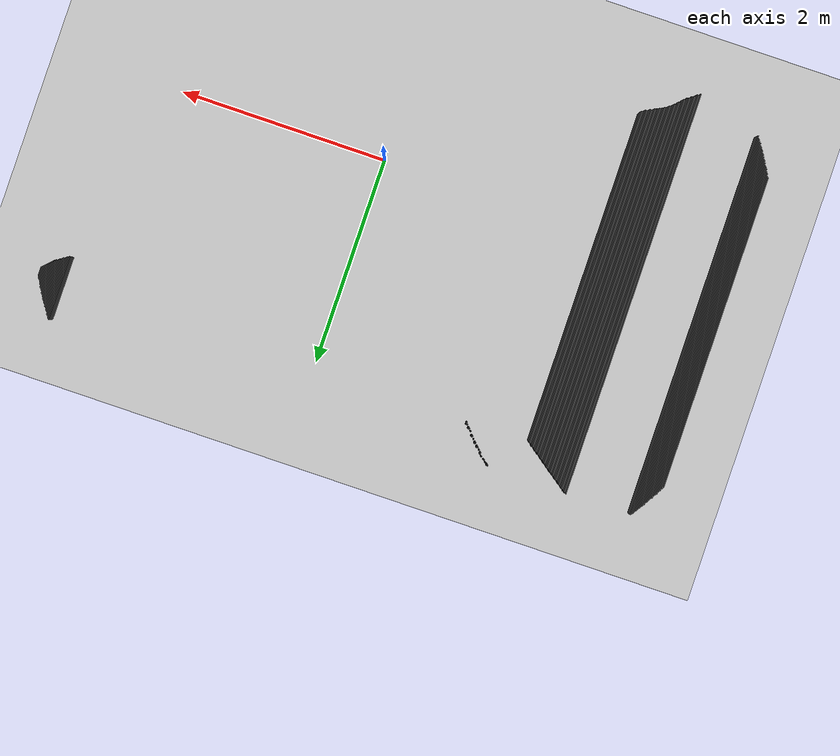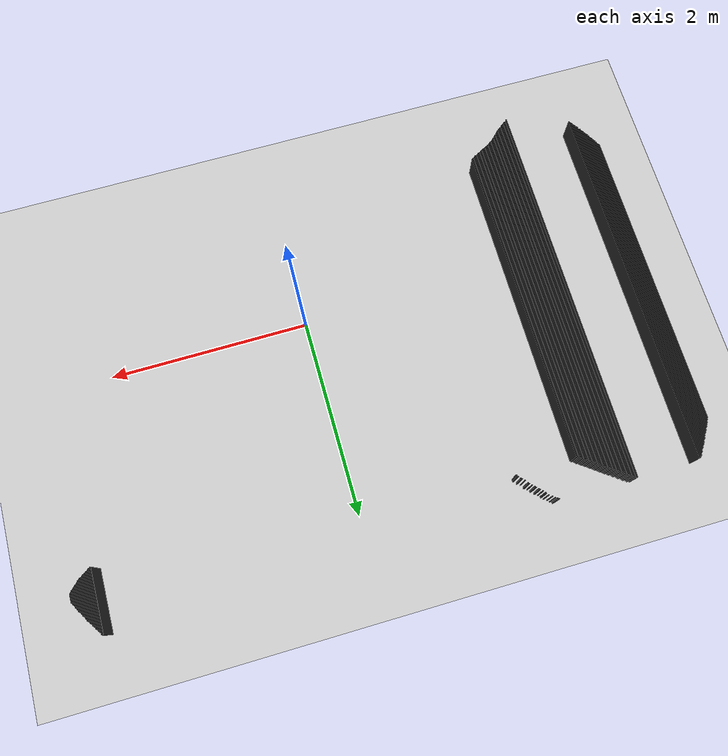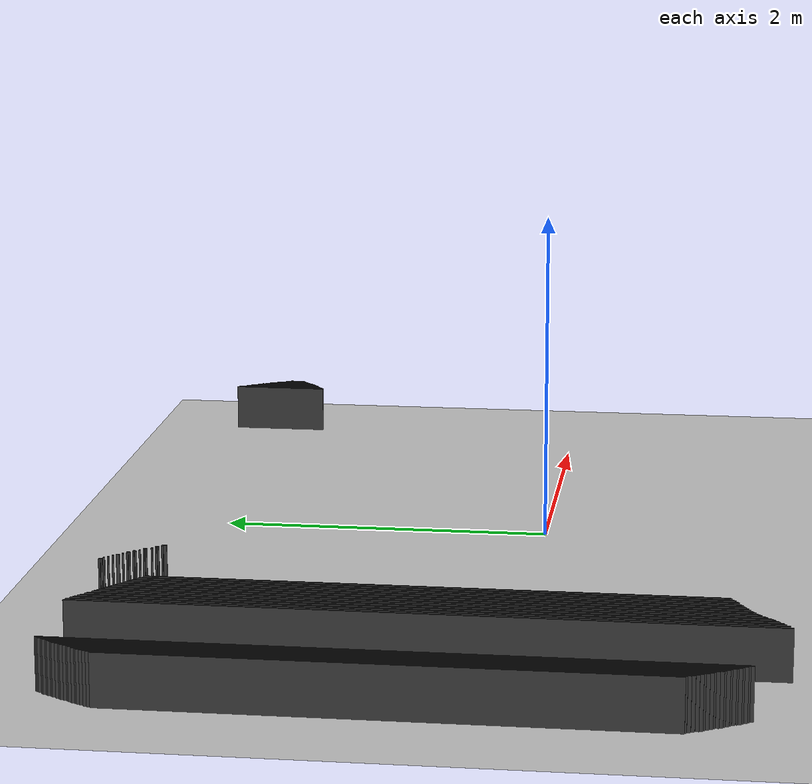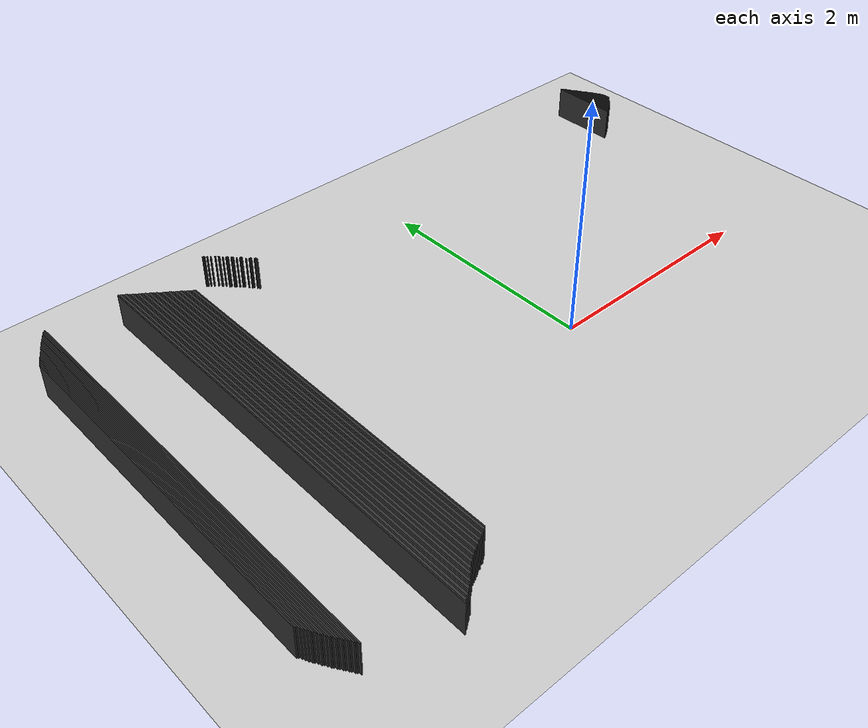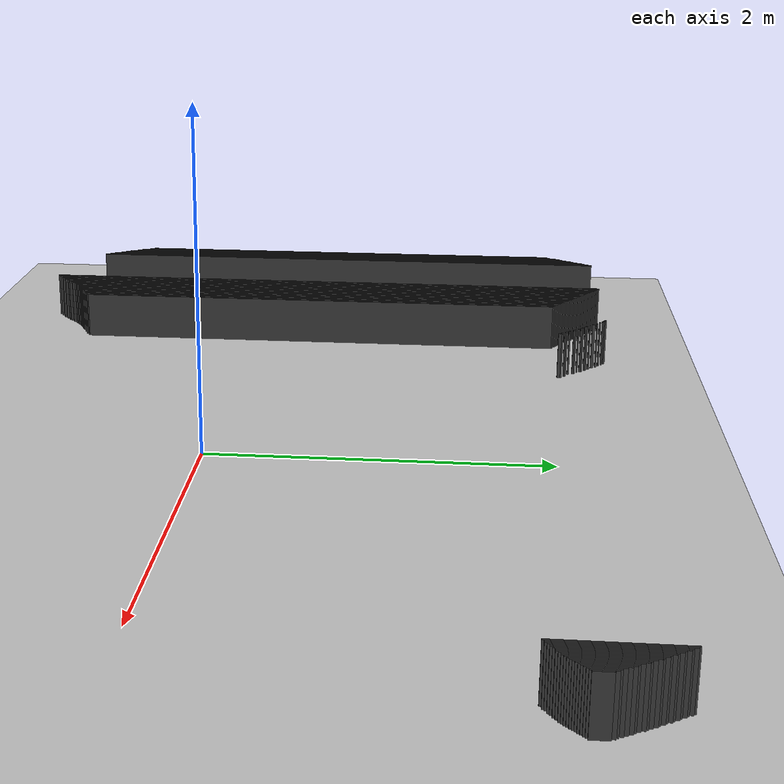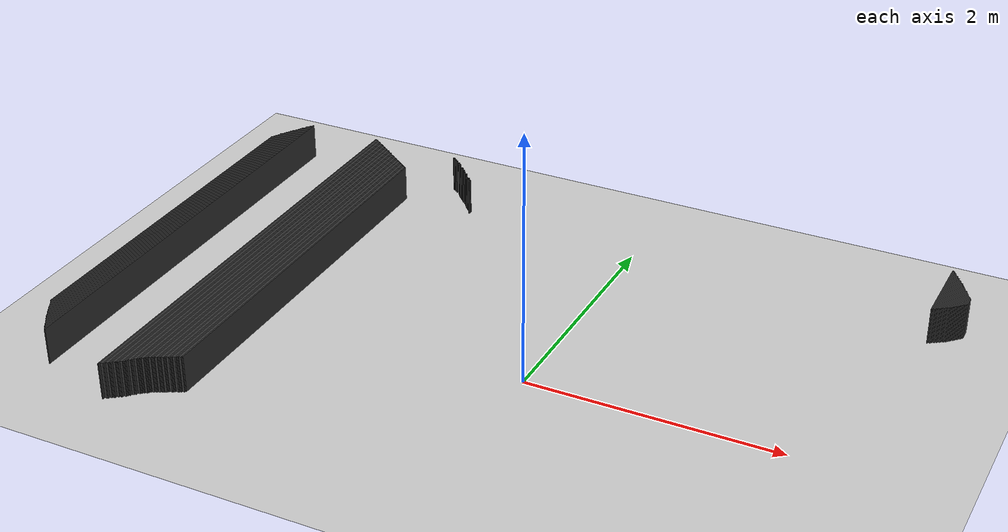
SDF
<sdf version="1.7">
 <world name="mapa_mundo">
  <model name="ground_plane">
   <static>true</static>
   <link name="link">
    <collision name="collision">
     <geometry><plane><normal>0 0 1</normal><size>10 10</size></plane></geometry>
     <surface><friction><ode><mu>100</mu><mu2>50</mu2></ode></friction></surface>
    </collision>
    <visual name="visual">
     <geometry><plane><normal>0 0 1</normal><size>10 10</size></plane></geometry>
     <material>
      <ambient>0.8 0.8 0.8 1</ambient>
      <diffuse>0.8 0.8 0.8 1</diffuse>
      <specular>0.8 0.8 0.8 1</specular>
     </material>
    </visual>
   </link>
  </model>
  <model name="wall_300">
   <static>true</static>
   <link name="link">
    <collision name="collision"><geometry><box><size>0.01 0.62 0.3</size></box></geometry></collision>
    <visual name="visual">
     <geometry><box><size>0.01 0.62 0.3</size></box></geometry>
     <material><ambient>0.2 0.2 0.2 1</ambient><diffuse>0.2 0.2 0.2 1</diffuse></material>
    </visual>
    <pose>2.475 2.11 0.15 0 0 0</pose>
   </link>
  </model>
  <model name="wall_301">
   <static>true</static>
   <link name="link">
    <collision name="collision"><geometry><box><size>0.01 3.93 0.3</size></box></geometry></collision>
    <visual name="visual">
     <geometry><box><size>0.01 3.93 0.3</size></box></geometry>
     <material><ambient>0.2 0.2 0.2 1</ambient><diffuse>0.2 0.2 0.2 1</diffuse></material>
    </visual>
    <pose>-2.595 0.445 0.15 0 0 0</pose>
   </link>
  </model>
  <model name="wall_302">
   <static>true</static>
   <link name="link">
    <collision name="collision"><geometry><box><size>0.01 0.6 0.3</size></box></geometry></collision>
    <visual name="visual">
     <geometry><box><size>0.01 0.6 0.3</size></box></geometry>
     <material><ambient>0.2 0.2 0.2 1</ambient><diffuse>0.2 0.2 0.2 1</diffuse></material>
    </visual>
    <pose>2.485 2.11 0.15 0 0 0</pose>
   </link>
  </model>
  <model name="wall_303">
   <static>true</static>
   <link name="link">
    <collision name="collision"><geometry><box><size>0.01 3.72 0.3</size></box></geometry></collision>
    <visual name="visual">
     <geometry><box><size>0.01 3.72 0.3</size></box></geometry>
     <material><ambient>0.2 0.2 0.2 1</ambient><diffuse>0.2 0.2 0.2 1</diffuse></material>
    </visual>
    <pose>-3.225 0.54 0.15 0 0 0</pose>
   </link>
  </model>
  <model name="wall_304">
   <static>true</static>
   <link name="link">
    <collision name="collision"><geometry><box><size>0.02 3.9 0.3</size></box></geometry></collision>
    <visual name="visual">
     <geometry><box><size>0.02 3.9 0.3</size></box></geometry>
     <material><ambient>0.2 0.2 0.2 1</ambient><diffuse>0.2 0.2 0.2 1</diffuse></material>
    </visual>
    <pose>-2.58 0.45 0.15 0 0 0</pose>
   </link>
  </model>
  <model name="wall_305">
   <static>true</static>
   <link name="link">
    <collision name="collision"><geometry><box><size>0.02 0.01 0.3</size></box></geometry></collision>
    <visual name="visual">
     <geometry><box><size>0.02 0.01 0.3</size></box></geometry>
     <material><ambient>0.2 0.2 0.2 1</ambient><diffuse>0.2 0.2 0.2 1</diffuse></material>
    </visual>
    <pose>-1.82 2.395 0.15 0 0 0</pose>
   </link>
  </model>
  <model name="wall_306">
   <static>true</static>
   <link name="link">
    <collision name="collision"><geometry><box><size>0.01 3.69 0.3</size></box></geometry></collision>
    <visual name="visual">
     <geometry><box><size>0.01 3.69 0.3</size></box></geometry>
     <material><ambient>0.2 0.2 0.2 1</ambient><diffuse>0.2 0.2 0.2 1</diffuse></material>
    </visual>
    <pose>-3.235 0.545 0.15 0 0 0</pose>
   </link>
  </model>
  <model name="wall_307">
   <static>true</static>
   <link name="link">
    <collision name="collision"><geometry><box><size>0.01 3.89 0.3</size></box></geometry></collision>
    <visual name="visual">
     <geometry><box><size>0.01 3.89 0.3</size></box></geometry>
     <material><ambient>0.2 0.2 0.2 1</ambient><diffuse>0.2 0.2 0.2 1</diffuse></material>
    </visual>
    <pose>-2.565 0.445 0.15 0 0 0</pose>
   </link>
  </model>
  <model name="wall_308">
   <static>true</static>
   <link name="link">
    <collision name="collision"><geometry><box><size>0.01 0.01 0.3</size></box></geometry></collision>
    <visual name="visual">
     <geometry><box><size>0.01 0.01 0.3</size></box></geometry>
     <material><ambient>0.2 0.2 0.2 1</ambient><diffuse>0.2 0.2 0.2 1</diffuse></material>
    </visual>
    <pose>-1.815 2.3850000000000002 0.15 0 0 0</pose>
   </link>
  </model>
  <model name="wall_309">
   <static>true</static>
   <link name="link">
    <collision name="collision"><geometry><box><size>0.01 0.58 0.3</size></box></geometry></collision>
    <visual name="visual">
     <geometry><box><size>0.01 0.58 0.3</size></box></geometry>
     <material><ambient>0.2 0.2 0.2 1</ambient><diffuse>0.2 0.2 0.2 1</diffuse></material>
    </visual>
    <pose>2.495 2.1 0.15 0 0 0</pose>
   </link>
  </model>
  <model name="wall_310">
   <static>true</static>
   <link name="link">
    <collision name="collision"><geometry><box><size>0.01 3.67 0.3</size></box></geometry></collision>
    <visual name="visual">
     <geometry><box><size>0.01 3.67 0.3</size></box></geometry>
     <material><ambient>0.2 0.2 0.2 1</ambient><diffuse>0.2 0.2 0.2 1</diffuse></material>
    </visual>
    <pose>-3.245 0.545 0.15 0 0 0</pose>
   </link>
  </model>
  <model name="wall_311">
   <static>true</static>
   <link name="link">
    <collision name="collision"><geometry><box><size>0.02 3.86 0.3</size></box></geometry></collision>
    <visual name="visual">
     <geometry><box><size>0.02 3.86 0.3</size></box></geometry>
     <material><ambient>0.2 0.2 0.2 1</ambient><diffuse>0.2 0.2 0.2 1</diffuse></material>
    </visual>
    <pose>-2.5500000000000003 0.45 0.15 0 0 0</pose>
   </link>
  </model>
  <model name="wall_312">
   <static>true</static>
   <link name="link">
    <collision name="collision"><geometry><box><size>0.01 0.01 0.3</size></box></geometry></collision>
    <visual name="visual">
     <geometry><box><size>0.01 0.01 0.3</size></box></geometry>
     <material><ambient>0.2 0.2 0.2 1</ambient><diffuse>0.2 0.2 0.2 1</diffuse></material>
    </visual>
    <pose>-1.795 2.375 0.15 0 0 0</pose>
   </link>
  </model>
  <model name="wall_313">
   <static>true</static>
   <link name="link">
    <collision name="collision"><geometry><box><size>0.01 0.56 0.3</size></box></geometry></collision>
    <visual name="visual">
     <geometry><box><size>0.01 0.56 0.3</size></box></geometry>
     <material><ambient>0.2 0.2 0.2 1</ambient><diffuse>0.2 0.2 0.2 1</diffuse></material>
    </visual>
    <pose>2.505 2.1 0.15 0 0 0</pose>
   </link>
  </model>
  <model name="wall_314">
   <static>true</static>
   <link name="link">
    <collision name="collision"><geometry><box><size>0.01 3.84 0.3</size></box></geometry></collision>
    <visual name="visual">
     <geometry><box><size>0.01 3.84 0.3</size></box></geometry>
     <material><ambient>0.2 0.2 0.2 1</ambient><diffuse>0.2 0.2 0.2 1</diffuse></material>
    </visual>
    <pose>-2.535 0.45 0.15 0 0 0</pose>
   </link>
  </model>
  <model name="wall_315">
   <static>true</static>
   <link name="link">
    <collision name="collision"><geometry><box><size>0.01 3.63 0.3</size></box></geometry></collision>
    <visual name="visual">
     <geometry><box><size>0.01 3.63 0.3</size></box></geometry>
     <material><ambient>0.2 0.2 0.2 1</ambient><diffuse>0.2 0.2 0.2 1</diffuse></material>
    </visual>
    <pose>-3.255 0.545 0.15 0 0 0</pose>
   </link>
  </model>
  <model name="wall_316">
   <static>true</static>
   <link name="link">
    <collision name="collision"><geometry><box><size>0.01 3.83 0.3</size></box></geometry></collision>
    <visual name="visual">
     <geometry><box><size>0.01 3.83 0.3</size></box></geometry>
     <material><ambient>0.2 0.2 0.2 1</ambient><diffuse>0.2 0.2 0.2 1</diffuse></material>
    </visual>
    <pose>-2.525 0.445 0.15 0 0 0</pose>
   </link>
  </model>
  <model name="wall_317">
   <static>true</static>
   <link name="link">
    <collision name="collision"><geometry><box><size>0.01 0.01 0.3</size></box></geometry></collision>
    <visual name="visual">
     <geometry><box><size>0.01 0.01 0.3</size></box></geometry>
     <material><ambient>0.2 0.2 0.2 1</ambient><diffuse>0.2 0.2 0.2 1</diffuse></material>
    </visual>
    <pose>-1.7750000000000001 2.355 0.15 0 0 0</pose>
   </link>
  </model>
  <model name="wall_318">
   <static>true</static>
   <link name="link">
    <collision name="collision"><geometry><box><size>0.01 0.53 0.3</size></box></geometry></collision>
    <visual name="visual">
     <geometry><box><size>0.01 0.53 0.3</size></box></geometry>
     <material><ambient>0.2 0.2 0.2 1</ambient><diffuse>0.2 0.2 0.2 1</diffuse></material>
    </visual>
    <pose>2.515 2.095 0.15 0 0 0</pose>
   </link>
  </model>
  <model name="wall_319">
   <static>true</static>
   <link name="link">
    <collision name="collision"><geometry><box><size>0.01 3.61 0.3</size></box></geometry></collision>
    <visual name="visual">
     <geometry><box><size>0.01 3.61 0.3</size></box></geometry>
     <material><ambient>0.2 0.2 0.2 1</ambient><diffuse>0.2 0.2 0.2 1</diffuse></material>
    </visual>
    <pose>-3.265 0.545 0.15 0 0 0</pose>
   </link>
  </model>
  <model name="wall_320">
   <static>true</static>
   <link name="link">
    <collision name="collision">
     <geometry><box><size>0.02 3.8000000000000003 0.3</size></box></geometry>
    </collision>
    <visual name="visual">
     <geometry><box><size>0.02 3.8000000000000003 0.3</size></box></geometry>
     <material><ambient>0.2 0.2 0.2 1</ambient><diffuse>0.2 0.2 0.2 1</diffuse></material>
    </visual>
    <pose>-2.5100000000000002 0.45 0.15 0 0 0</pose>
   </link>
  </model>
  <model name="wall_321">
   <static>true</static>
   <link name="link">
    <collision name="collision"><geometry><box><size>0.01 0.52 0.3</size></box></geometry></collision>
    <visual name="visual">
     <geometry><box><size>0.01 0.52 0.3</size></box></geometry>
     <material><ambient>0.2 0.2 0.2 1</ambient><diffuse>0.2 0.2 0.2 1</diffuse></material>
    </visual>
    <pose>2.525 2.09 0.15 0 0 0</pose>
   </link>
  </model>
  <model name="wall_322">
   <static>true</static>
   <link name="link">
    <collision name="collision">
     <geometry><box><size>0.01 3.7800000000000002 0.3</size></box></geometry>
    </collision>
    <visual name="visual">
     <geometry><box><size>0.01 3.7800000000000002 0.3</size></box></geometry>
     <material><ambient>0.2 0.2 0.2 1</ambient><diffuse>0.2 0.2 0.2 1</diffuse></material>
    </visual>
    <pose>-2.495 0.45 0.15 0 0 0</pose>
   </link>
  </model>
  <model name="wall_323">
   <static>true</static>
   <link name="link">
    <collision name="collision"><geometry><box><size>0.01 0.01 0.3</size></box></geometry></collision>
    <visual name="visual">
     <geometry><box><size>0.01 0.01 0.3</size></box></geometry>
     <material><ambient>0.2 0.2 0.2 1</ambient><diffuse>0.2 0.2 0.2 1</diffuse></material>
    </visual>
    <pose>-1.745 2.335 0.15 0 0 0</pose>
   </link>
  </model>
  <model name="wall_324">
   <static>true</static>
   <link name="link">
    <collision name="collision">
     <geometry><box><size>0.01 3.5700000000000003 0.3</size></box></geometry>
    </collision>
    <visual name="visual">
     <geometry><box><size>0.01 3.5700000000000003 0.3</size></box></geometry>
     <material><ambient>0.2 0.2 0.2 1</ambient><diffuse>0.2 0.2 0.2 1</diffuse></material>
    </visual>
    <pose>-3.275 0.545 0.15 0 0 0</pose>
   </link>
  </model>
  <model name="wall_325">
   <static>true</static>
   <link name="link">
    <collision name="collision"><geometry><box><size>0.01 3.77 0.3</size></box></geometry></collision>
    <visual name="visual">
     <geometry><box><size>0.01 3.77 0.3</size></box></geometry>
     <material><ambient>0.2 0.2 0.2 1</ambient><diffuse>0.2 0.2 0.2 1</diffuse></material>
    </visual>
    <pose>-2.485 0.445 0.15 0 0 0</pose>
   </link>
  </model>
  <model name="wall_326">
   <static>true</static>
   <link name="link">
    <collision name="collision"><geometry><box><size>0.01 0.49 0.3</size></box></geometry></collision>
    <visual name="visual">
     <geometry><box><size>0.01 0.49 0.3</size></box></geometry>
     <material><ambient>0.2 0.2 0.2 1</ambient><diffuse>0.2 0.2 0.2 1</diffuse></material>
    </visual>
    <pose>2.535 2.085 0.15 0 0 0</pose>
   </link>
  </model>
  <model name="wall_327">
   <static>true</static>
   <link name="link">
    <collision name="collision">
     <geometry><box><size>0.01 3.5500000000000003 0.3</size></box></geometry>
    </collision>
    <visual name="visual">
     <geometry><box><size>0.01 3.5500000000000003 0.3</size></box></geometry>
     <material><ambient>0.2 0.2 0.2 1</ambient><diffuse>0.2 0.2 0.2 1</diffuse></material>
    </visual>
    <pose>-3.285 0.545 0.15 0 0 0</pose>
   </link>
  </model>
  <model name="wall_328">
   <static>true</static>
   <link name="link">
    <collision name="collision"><geometry><box><size>0.02 3.74 0.3</size></box></geometry></collision>
    <visual name="visual">
     <geometry><box><size>0.02 3.74 0.3</size></box></geometry>
     <material><ambient>0.2 0.2 0.2 1</ambient><diffuse>0.2 0.2 0.2 1</diffuse></material>
    </visual>
    <pose>-2.47 0.45 0.15 0 0 0</pose>
   </link>
  </model>
  <model name="wall_329">
   <static>true</static>
   <link name="link">
    <collision name="collision"><geometry><box><size>0.01 0.02 0.3</size></box></geometry></collision>
    <visual name="visual">
     <geometry><box><size>0.01 0.02 0.3</size></box></geometry>
     <material><ambient>0.2 0.2 0.2 1</ambient><diffuse>0.2 0.2 0.2 1</diffuse></material>
    </visual>
    <pose>-1.725 2.31 0.15 0 0 0</pose>
   </link>
  </model>
  <model name="wall_330">
   <static>true</static>
   <link name="link">
    <collision name="collision">
     <geometry><box><size>0.01 0.47000000000000003 0.3</size></box></geometry>
    </collision>
    <visual name="visual">
     <geometry><box><size>0.01 0.47000000000000003 0.3</size></box></geometry>
     <material><ambient>0.2 0.2 0.2 1</ambient><diffuse>0.2 0.2 0.2 1</diffuse></material>
    </visual>
    <pose>2.545 2.085 0.15 0 0 0</pose>
   </link>
  </model>
  <model name="wall_331">
   <static>true</static>
   <link name="link">
    <collision name="collision"><geometry><box><size>0.01 3.72 0.3</size></box></geometry></collision>
    <visual name="visual">
     <geometry><box><size>0.01 3.72 0.3</size></box></geometry>
     <material><ambient>0.2 0.2 0.2 1</ambient><diffuse>0.2 0.2 0.2 1</diffuse></material>
    </visual>
    <pose>-2.455 0.45 0.15 0 0 0</pose>
   </link>
  </model>
  <model name="wall_332">
   <static>true</static>
   <link name="link">
    <collision name="collision">
     <geometry><box><size>0.01 3.5100000000000002 0.3</size></box></geometry>
    </collision>
    <visual name="visual">
     <geometry><box><size>0.01 3.5100000000000002 0.3</size></box></geometry>
     <material><ambient>0.2 0.2 0.2 1</ambient><diffuse>0.2 0.2 0.2 1</diffuse></material>
    </visual>
    <pose>-3.295 0.545 0.15 0 0 0</pose>
   </link>
  </model>
  <model name="wall_333">
   <static>true</static>
   <link name="link">
    <collision name="collision"><geometry><box><size>0.01 3.7 0.3</size></box></geometry></collision>
    <visual name="visual">
     <geometry><box><size>0.01 3.7 0.3</size></box></geometry>
     <material><ambient>0.2 0.2 0.2 1</ambient><diffuse>0.2 0.2 0.2 1</diffuse></material>
    </visual>
    <pose>-2.445 0.45 0.15 0 0 0</pose>
   </link>
  </model>
  <model name="wall_334">
   <static>true</static>
   <link name="link">
    <collision name="collision"><geometry><box><size>0.01 0.45 0.3</size></box></geometry></collision>
    <visual name="visual">
     <geometry><box><size>0.01 0.45 0.3</size></box></geometry>
     <material><ambient>0.2 0.2 0.2 1</ambient><diffuse>0.2 0.2 0.2 1</diffuse></material>
    </visual>
    <pose>2.555 2.075 0.15 0 0 0</pose>
   </link>
  </model>
  <model name="wall_335">
   <static>true</static>
   <link name="link">
    <collision name="collision"><geometry><box><size>0.01 3.49 0.3</size></box></geometry></collision>
    <visual name="visual">
     <geometry><box><size>0.01 3.49 0.3</size></box></geometry>
     <material><ambient>0.2 0.2 0.2 1</ambient><diffuse>0.2 0.2 0.2 1</diffuse></material>
    </visual>
    <pose>-3.305 0.545 0.15 0 0 0</pose>
   </link>
  </model>
  <model name="wall_336">
   <static>true</static>
   <link name="link">
    <collision name="collision"><geometry><box><size>0.02 3.67 0.3</size></box></geometry></collision>
    <visual name="visual">
     <geometry><box><size>0.02 3.67 0.3</size></box></geometry>
     <material><ambient>0.2 0.2 0.2 1</ambient><diffuse>0.2 0.2 0.2 1</diffuse></material>
    </visual>
    <pose>-2.43 0.455 0.15 0 0 0</pose>
   </link>
  </model>
  <model name="wall_337">
   <static>true</static>
   <link name="link">
    <collision name="collision"><geometry><box><size>0.01 0.01 0.3</size></box></geometry></collision>
    <visual name="visual">
     <geometry><box><size>0.01 0.01 0.3</size></box></geometry>
     <material><ambient>0.2 0.2 0.2 1</ambient><diffuse>0.2 0.2 0.2 1</diffuse></material>
    </visual>
    <pose>-1.705 2.285 0.15 0 0 0</pose>
   </link>
  </model>
  <model name="wall_338">
   <static>true</static>
   <link name="link">
    <collision name="collision"><geometry><box><size>0.01 0.43 0.3</size></box></geometry></collision>
    <visual name="visual">
     <geometry><box><size>0.01 0.43 0.3</size></box></geometry>
     <material><ambient>0.2 0.2 0.2 1</ambient><diffuse>0.2 0.2 0.2 1</diffuse></material>
    </visual>
    <pose>2.565 2.075 0.15 0 0 0</pose>
   </link>
  </model>
  <model name="wall_339">
   <static>true</static>
   <link name="link">
    <collision name="collision"><geometry><box><size>0.01 3.65 0.3</size></box></geometry></collision>
    <visual name="visual">
     <geometry><box><size>0.01 3.65 0.3</size></box></geometry>
     <material><ambient>0.2 0.2 0.2 1</ambient><diffuse>0.2 0.2 0.2 1</diffuse></material>
    </visual>
    <pose>-2.415 0.455 0.15 0 0 0</pose>
   </link>
  </model>
  <model name="wall_340">
   <static>true</static>
   <link name="link">
    <collision name="collision"><geometry><box><size>0.01 3.45 0.3</size></box></geometry></collision>
    <visual name="visual">
     <geometry><box><size>0.01 3.45 0.3</size></box></geometry>
     <material><ambient>0.2 0.2 0.2 1</ambient><diffuse>0.2 0.2 0.2 1</diffuse></material>
    </visual>
    <pose>-3.315 0.545 0.15 0 0 0</pose>
   </link>
  </model>
  <model name="wall_341">
   <static>true</static>
   <link name="link">
    <collision name="collision"><geometry><box><size>0.02 3.62 0.3</size></box></geometry></collision>
    <visual name="visual">
     <geometry><box><size>0.02 3.62 0.3</size></box></geometry>
     <material><ambient>0.2 0.2 0.2 1</ambient><diffuse>0.2 0.2 0.2 1</diffuse></material>
    </visual>
    <pose>-2.4 0.46 0.15 0 0 0</pose>
   </link>
  </model>
  <model name="wall_342">
   <static>true</static>
   <link name="link">
    <collision name="collision"><geometry><box><size>0.02 0.01 0.3</size></box></geometry></collision>
    <visual name="visual">
     <geometry><box><size>0.02 0.01 0.3</size></box></geometry>
     <material><ambient>0.2 0.2 0.2 1</ambient><diffuse>0.2 0.2 0.2 1</diffuse></material>
    </visual>
    <pose>-1.68 2.265 0.15 0 0 0</pose>
   </link>
  </model>
  <model name="wall_343">
   <static>true</static>
   <link name="link">
    <collision name="collision"><geometry><box><size>0.01 0.4 0.3</size></box></geometry></collision>
    <visual name="visual">
     <geometry><box><size>0.01 0.4 0.3</size></box></geometry>
     <material><ambient>0.2 0.2 0.2 1</ambient><diffuse>0.2 0.2 0.2 1</diffuse></material>
    </visual>
    <pose>2.575 2.07 0.15 0 0 0</pose>
   </link>
  </model>
  <model name="wall_344">
   <static>true</static>
   <link name="link">
    <collision name="collision"><geometry><box><size>0.01 3.6 0.3</size></box></geometry></collision>
    <visual name="visual">
     <geometry><box><size>0.01 3.6 0.3</size></box></geometry>
     <material><ambient>0.2 0.2 0.2 1</ambient><diffuse>0.2 0.2 0.2 1</diffuse></material>
    </visual>
    <pose>-2.3850000000000002 0.46 0.15 0 0 0</pose>
   </link>
  </model>
  <model name="wall_345">
   <static>true</static>
   <link name="link">
    <collision name="collision"><geometry><box><size>0.01 0.01 0.3</size></box></geometry></collision>
    <visual name="visual">
     <geometry><box><size>0.01 0.01 0.3</size></box></geometry>
     <material><ambient>0.2 0.2 0.2 1</ambient><diffuse>0.2 0.2 0.2 1</diffuse></material>
    </visual>
    <pose>-1.675 2.255 0.15 0 0 0</pose>
   </link>
  </model>
  <model name="wall_346">
   <static>true</static>
   <link name="link">
    <collision name="collision"><geometry><box><size>0.01 0.39 0.3</size></box></geometry></collision>
    <visual name="visual">
     <geometry><box><size>0.01 0.39 0.3</size></box></geometry>
     <material><ambient>0.2 0.2 0.2 1</ambient><diffuse>0.2 0.2 0.2 1</diffuse></material>
    </visual>
    <pose>2.585 2.065 0.15 0 0 0</pose>
   </link>
  </model>
  <model name="wall_347">
   <static>true</static>
   <link name="link">
    <collision name="collision"><geometry><box><size>0.01 3.42 0.3</size></box></geometry></collision>
    <visual name="visual">
     <geometry><box><size>0.01 3.42 0.3</size></box></geometry>
     <material><ambient>0.2 0.2 0.2 1</ambient><diffuse>0.2 0.2 0.2 1</diffuse></material>
    </visual>
    <pose>-3.325 0.54 0.15 0 0 0</pose>
   </link>
  </model>
  <model name="wall_348">
   <static>true</static>
   <link name="link">
    <collision name="collision"><geometry><box><size>0.01 3.58 0.3</size></box></geometry></collision>
    <visual name="visual">
     <geometry><box><size>0.01 3.58 0.3</size></box></geometry>
     <material><ambient>0.2 0.2 0.2 1</ambient><diffuse>0.2 0.2 0.2 1</diffuse></material>
    </visual>
    <pose>-2.375 0.46 0.15 0 0 0</pose>
   </link>
  </model>
  <model name="wall_349">
   <static>true</static>
   <link name="link">
    <collision name="collision"><geometry><box><size>0.01 3.39 0.3</size></box></geometry></collision>
    <visual name="visual">
     <geometry><box><size>0.01 3.39 0.3</size></box></geometry>
     <material><ambient>0.2 0.2 0.2 1</ambient><diffuse>0.2 0.2 0.2 1</diffuse></material>
    </visual>
    <pose>-3.335 0.545 0.15 0 0 0</pose>
   </link>
  </model>
  <model name="wall_350">
   <static>true</static>
   <link name="link">
    <collision name="collision"><geometry><box><size>0.02 3.56 0.3</size></box></geometry></collision>
    <visual name="visual">
     <geometry><box><size>0.02 3.56 0.3</size></box></geometry>
     <material><ambient>0.2 0.2 0.2 1</ambient><diffuse>0.2 0.2 0.2 1</diffuse></material>
    </visual>
    <pose>-2.36 0.46 0.15 0 0 0</pose>
   </link>
  </model>
  <model name="wall_351">
   <static>true</static>
   <link name="link">
    <collision name="collision"><geometry><box><size>0.02 0.01 0.3</size></box></geometry></collision>
    <visual name="visual">
     <geometry><box><size>0.02 0.01 0.3</size></box></geometry>
     <material><ambient>0.2 0.2 0.2 1</ambient><diffuse>0.2 0.2 0.2 1</diffuse></material>
    </visual>
    <pose>-1.6500000000000001 2.235 0.15 0 0 0</pose>
   </link>
  </model>
  <model name="wall_352">
   <static>true</static>
   <link name="link">
    <collision name="collision"><geometry><box><size>0.01 0.36 0.3</size></box></geometry></collision>
    <visual name="visual">
     <geometry><box><size>0.01 0.36 0.3</size></box></geometry>
     <material><ambient>0.2 0.2 0.2 1</ambient><diffuse>0.2 0.2 0.2 1</diffuse></material>
    </visual>
    <pose>2.595 2.06 0.15 0 0 0</pose>
   </link>
  </model>
  <model name="wall_353">
   <static>true</static>
   <link name="link">
    <collision name="collision"><geometry><box><size>0.01 3.54 0.3</size></box></geometry></collision>
    <visual name="visual">
     <geometry><box><size>0.01 3.54 0.3</size></box></geometry>
     <material><ambient>0.2 0.2 0.2 1</ambient><diffuse>0.2 0.2 0.2 1</diffuse></material>
    </visual>
    <pose>-2.345 0.46 0.15 0 0 0</pose>
   </link>
  </model>
  <model name="wall_354">
   <static>true</static>
   <link name="link">
    <collision name="collision"><geometry><box><size>0.01 0.01 0.3</size></box></geometry></collision>
    <visual name="visual">
     <geometry><box><size>0.01 0.01 0.3</size></box></geometry>
     <material><ambient>0.2 0.2 0.2 1</ambient><diffuse>0.2 0.2 0.2 1</diffuse></material>
    </visual>
    <pose>-1.645 2.225 0.15 0 0 0</pose>
   </link>
  </model>
  <model name="wall_355">
   <static>true</static>
   <link name="link">
    <collision name="collision"><geometry><box><size>0.01 3.35 0.3</size></box></geometry></collision>
    <visual name="visual">
     <geometry><box><size>0.01 3.35 0.3</size></box></geometry>
     <material><ambient>0.2 0.2 0.2 1</ambient><diffuse>0.2 0.2 0.2 1</diffuse></material>
    </visual>
    <pose>-3.345 0.545 0.15 0 0 0</pose>
   </link>
  </model>
  <model name="wall_356">
   <static>true</static>
   <link name="link">
    <collision name="collision"><geometry><box><size>0.01 3.52 0.3</size></box></geometry></collision>
    <visual name="visual">
     <geometry><box><size>0.01 3.52 0.3</size></box></geometry>
     <material><ambient>0.2 0.2 0.2 1</ambient><diffuse>0.2 0.2 0.2 1</diffuse></material>
    </visual>
    <pose>-2.335 0.46 0.15 0 0 0</pose>
   </link>
  </model>
  <model name="wall_357">
   <static>true</static>
   <link name="link">
    <collision name="collision"><geometry><box><size>0.01 0.33 0.3</size></box></geometry></collision>
    <visual name="visual">
     <geometry><box><size>0.01 0.33 0.3</size></box></geometry>
     <material><ambient>0.2 0.2 0.2 1</ambient><diffuse>0.2 0.2 0.2 1</diffuse></material>
    </visual>
    <pose>2.605 2.055 0.15 0 0 0</pose>
   </link>
  </model>
  <model name="wall_358">
   <static>true</static>
   <link name="link">
    <collision name="collision"><geometry><box><size>0.02 3.5 0.3</size></box></geometry></collision>
    <visual name="visual">
     <geometry><box><size>0.02 3.5 0.3</size></box></geometry>
     <material><ambient>0.2 0.2 0.2 1</ambient><diffuse>0.2 0.2 0.2 1</diffuse></material>
    </visual>
    <pose>-2.32 0.46 0.15 0 0 0</pose>
   </link>
  </model>
  <model name="wall_359">
   <static>true</static>
   <link name="link">
    <collision name="collision"><geometry><box><size>0.01 0.01 0.3</size></box></geometry></collision>
    <visual name="visual">
     <geometry><box><size>0.01 0.01 0.3</size></box></geometry>
     <material><ambient>0.2 0.2 0.2 1</ambient><diffuse>0.2 0.2 0.2 1</diffuse></material>
    </visual>
    <pose>-1.625 2.205 0.15 0 0 0</pose>
   </link>
  </model>
  <model name="wall_360">
   <static>true</static>
   <link name="link">
    <collision name="collision"><geometry><box><size>0.01 0.31 0.3</size></box></geometry></collision>
    <visual name="visual">
     <geometry><box><size>0.01 0.31 0.3</size></box></geometry>
     <material><ambient>0.2 0.2 0.2 1</ambient><diffuse>0.2 0.2 0.2 1</diffuse></material>
    </visual>
    <pose>2.615 2.055 0.15 0 0 0</pose>
   </link>
  </model>
  <model name="wall_361">
   <static>true</static>
   <link name="link">
    <collision name="collision">
     <geometry><box><size>0.01 3.3200000000000003 0.3</size></box></geometry>
    </collision>
    <visual name="visual">
     <geometry><box><size>0.01 3.3200000000000003 0.3</size></box></geometry>
     <material><ambient>0.2 0.2 0.2 1</ambient><diffuse>0.2 0.2 0.2 1</diffuse></material>
    </visual>
    <pose>-3.355 0.54 0.15 0 0 0</pose>
   </link>
  </model>
  <model name="wall_362">
   <static>true</static>
   <link name="link">
    <collision name="collision"><geometry><box><size>0.01 3.48 0.3</size></box></geometry></collision>
    <visual name="visual">
     <geometry><box><size>0.01 3.48 0.3</size></box></geometry>
     <material><ambient>0.2 0.2 0.2 1</ambient><diffuse>0.2 0.2 0.2 1</diffuse></material>
    </visual>
    <pose>-2.305 0.46 0.15 0 0 0</pose>
   </link>
  </model>
  <model name="wall_363">
   <static>true</static>
   <link name="link">
    <collision name="collision"><geometry><box><size>0.01 3.29 0.3</size></box></geometry></collision>
    <visual name="visual">
     <geometry><box><size>0.01 3.29 0.3</size></box></geometry>
     <material><ambient>0.2 0.2 0.2 1</ambient><diffuse>0.2 0.2 0.2 1</diffuse></material>
    </visual>
    <pose>-3.365 0.545 0.15 0 0 0</pose>
   </link>
  </model>
  <model name="wall_364">
   <static>true</static>
   <link name="link">
    <collision name="collision"><geometry><box><size>0.01 3.47 0.3</size></box></geometry></collision>
    <visual name="visual">
     <geometry><box><size>0.01 3.47 0.3</size></box></geometry>
     <material><ambient>0.2 0.2 0.2 1</ambient><diffuse>0.2 0.2 0.2 1</diffuse></material>
    </visual>
    <pose>-2.295 0.455 0.15 0 0 0</pose>
   </link>
  </model>
  <model name="wall_365">
   <static>true</static>
   <link name="link">
    <collision name="collision"><geometry><box><size>0.02 0.01 0.3</size></box></geometry></collision>
    <visual name="visual">
     <geometry><box><size>0.02 0.01 0.3</size></box></geometry>
     <material><ambient>0.2 0.2 0.2 1</ambient><diffuse>0.2 0.2 0.2 1</diffuse></material>
    </visual>
    <pose>-1.6 2.185 0.15 0 0 0</pose>
   </link>
  </model>
  <model name="wall_366">
   <static>true</static>
   <link name="link">
    <collision name="collision"><geometry><box><size>0.01 0.28 0.3</size></box></geometry></collision>
    <visual name="visual">
     <geometry><box><size>0.01 0.28 0.3</size></box></geometry>
     <material><ambient>0.2 0.2 0.2 1</ambient><diffuse>0.2 0.2 0.2 1</diffuse></material>
    </visual>
    <pose>2.625 2.05 0.15 0 0 0</pose>
   </link>
  </model>
  <model name="wall_367">
   <static>true</static>
   <link name="link">
    <collision name="collision"><geometry><box><size>0.02 3.45 0.3</size></box></geometry></collision>
    <visual name="visual">
     <geometry><box><size>0.02 3.45 0.3</size></box></geometry>
     <material><ambient>0.2 0.2 0.2 1</ambient><diffuse>0.2 0.2 0.2 1</diffuse></material>
    </visual>
    <pose>-2.2800000000000002 0.455 0.15 0 0 0</pose>
   </link>
  </model>
  <model name="wall_368">
   <static>true</static>
   <link name="link">
    <collision name="collision"><geometry><box><size>0.01 0.01 0.3</size></box></geometry></collision>
    <visual name="visual">
     <geometry><box><size>0.01 0.01 0.3</size></box></geometry>
     <material><ambient>0.2 0.2 0.2 1</ambient><diffuse>0.2 0.2 0.2 1</diffuse></material>
    </visual>
    <pose>-1.595 2.1750000000000003 0.15 0 0 0</pose>
   </link>
  </model>
  <model name="wall_369">
   <static>true</static>
   <link name="link">
    <collision name="collision"><geometry><box><size>0.01 3.25 0.3</size></box></geometry></collision>
    <visual name="visual">
     <geometry><box><size>0.01 3.25 0.3</size></box></geometry>
     <material><ambient>0.2 0.2 0.2 1</ambient><diffuse>0.2 0.2 0.2 1</diffuse></material>
    </visual>
    <pose>-3.375 0.545 0.15 0 0 0</pose>
   </link>
  </model>
  <model name="wall_370">
   <static>true</static>
   <link name="link">
    <collision name="collision"><geometry><box><size>0.01 3.43 0.3</size></box></geometry></collision>
    <visual name="visual">
     <geometry><box><size>0.01 3.43 0.3</size></box></geometry>
     <material><ambient>0.2 0.2 0.2 1</ambient><diffuse>0.2 0.2 0.2 1</diffuse></material>
    </visual>
    <pose>-2.265 0.455 0.15 0 0 0</pose>
   </link>
  </model>
  <model name="wall_371">
   <static>true</static>
   <link name="link">
    <collision name="collision"><geometry><box><size>0.01 0.25 0.3</size></box></geometry></collision>
    <visual name="visual">
     <geometry><box><size>0.01 0.25 0.3</size></box></geometry>
     <material><ambient>0.2 0.2 0.2 1</ambient><diffuse>0.2 0.2 0.2 1</diffuse></material>
    </visual>
    <pose>2.6350000000000002 2.045 0.15 0 0 0</pose>
   </link>
  </model>
  <model name="wall_372">
   <static>true</static>
   <link name="link">
    <collision name="collision"><geometry><box><size>0.01 3.42 0.3</size></box></geometry></collision>
    <visual name="visual">
     <geometry><box><size>0.01 3.42 0.3</size></box></geometry>
     <material><ambient>0.2 0.2 0.2 1</ambient><diffuse>0.2 0.2 0.2 1</diffuse></material>
    </visual>
    <pose>-2.255 0.45 0.15 0 0 0</pose>
   </link>
  </model>
  <model name="wall_373">
   <static>true</static>
   <link name="link">
    <collision name="collision"><geometry><box><size>0.01 0.23 0.3</size></box></geometry></collision>
    <visual name="visual">
     <geometry><box><size>0.01 0.23 0.3</size></box></geometry>
     <material><ambient>0.2 0.2 0.2 1</ambient><diffuse>0.2 0.2 0.2 1</diffuse></material>
    </visual>
    <pose>2.645 2.045 0.15 0 0 0</pose>
   </link>
  </model>
  <model name="wall_374">
   <static>true</static>
   <link name="link">
    <collision name="collision"><geometry><box><size>0.01 3.22 0.3</size></box></geometry></collision>
    <visual name="visual">
     <geometry><box><size>0.01 3.22 0.3</size></box></geometry>
     <material><ambient>0.2 0.2 0.2 1</ambient><diffuse>0.2 0.2 0.2 1</diffuse></material>
    </visual>
    <pose>-3.3850000000000002 0.54 0.15 0 0 0</pose>
   </link>
  </model>
  <model name="wall_375">
   <static>true</static>
   <link name="link">
    <collision name="collision"><geometry><box><size>0.02 3.4 0.3</size></box></geometry></collision>
    <visual name="visual">
     <geometry><box><size>0.02 3.4 0.3</size></box></geometry>
     <material><ambient>0.2 0.2 0.2 1</ambient><diffuse>0.2 0.2 0.2 1</diffuse></material>
    </visual>
    <pose>-2.24 0.45 0.15 0 0 0</pose>
   </link>
  </model>
  <model name="wall_376">
   <static>true</static>
   <link name="link">
    <collision name="collision"><geometry><box><size>0.01 0.01 0.3</size></box></geometry></collision>
    <visual name="visual">
     <geometry><box><size>0.01 0.01 0.3</size></box></geometry>
     <material><ambient>0.2 0.2 0.2 1</ambient><diffuse>0.2 0.2 0.2 1</diffuse></material>
    </visual>
    <pose>-1.575 2.145 0.15 0 0 0</pose>
   </link>
  </model>
  <model name="wall_377">
   <static>true</static>
   <link name="link">
    <collision name="collision"><geometry><box><size>0.01 3.19 0.3</size></box></geometry></collision>
    <visual name="visual">
     <geometry><box><size>0.01 3.19 0.3</size></box></geometry>
     <material><ambient>0.2 0.2 0.2 1</ambient><diffuse>0.2 0.2 0.2 1</diffuse></material>
    </visual>
    <pose>-3.395 0.545 0.15 0 0 0</pose>
   </link>
  </model>
  <model name="wall_378">
   <static>true</static>
   <link name="link">
    <collision name="collision"><geometry><box><size>0.01 3.38 0.3</size></box></geometry></collision>
    <visual name="visual">
     <geometry><box><size>0.01 3.38 0.3</size></box></geometry>
     <material><ambient>0.2 0.2 0.2 1</ambient><diffuse>0.2 0.2 0.2 1</diffuse></material>
    </visual>
    <pose>-2.225 0.45 0.15 0 0 0</pose>
   </link>
  </model>
  <model name="wall_379">
   <static>true</static>
   <link name="link">
    <collision name="collision"><geometry><box><size>0.01 0.2 0.3</size></box></geometry></collision>
    <visual name="visual">
     <geometry><box><size>0.01 0.2 0.3</size></box></geometry>
     <material><ambient>0.2 0.2 0.2 1</ambient><diffuse>0.2 0.2 0.2 1</diffuse></material>
    </visual>
    <pose>2.6550000000000002 2.04 0.15 0 0 0</pose>
   </link>
  </model>
  <model name="wall_380">
   <static>true</static>
   <link name="link">
    <collision name="collision"><geometry><box><size>0.02 3.36 0.3</size></box></geometry></collision>
    <visual name="visual">
     <geometry><box><size>0.02 3.36 0.3</size></box></geometry>
     <material><ambient>0.2 0.2 0.2 1</ambient><diffuse>0.2 0.2 0.2 1</diffuse></material>
    </visual>
    <pose>-2.21 0.45 0.15 0 0 0</pose>
   </link>
  </model>
  <model name="wall_381">
   <static>true</static>
   <link name="link">
    <collision name="collision"><geometry><box><size>0.02 0.01 0.3</size></box></geometry></collision>
    <visual name="visual">
     <geometry><box><size>0.02 0.01 0.3</size></box></geometry>
     <material><ambient>0.2 0.2 0.2 1</ambient><diffuse>0.2 0.2 0.2 1</diffuse></material>
    </visual>
    <pose>-1.55 2.125 0.15 0 0 0</pose>
   </link>
  </model>
  <model name="wall_382">
   <static>true</static>
   <link name="link">
    <collision name="collision"><geometry><box><size>0.01 3.15 0.3</size></box></geometry></collision>
    <visual name="visual">
     <geometry><box><size>0.01 3.15 0.3</size></box></geometry>
     <material><ambient>0.2 0.2 0.2 1</ambient><diffuse>0.2 0.2 0.2 1</diffuse></material>
    </visual>
    <pose>-3.4050000000000002 0.545 0.15 0 0 0</pose>
   </link>
  </model>
  <model name="wall_383">
   <static>true</static>
   <link name="link">
    <collision name="collision"><geometry><box><size>0.01 3.35 0.3</size></box></geometry></collision>
    <visual name="visual">
     <geometry><box><size>0.01 3.35 0.3</size></box></geometry>
     <material><ambient>0.2 0.2 0.2 1</ambient><diffuse>0.2 0.2 0.2 1</diffuse></material>
    </visual>
    <pose>-2.195 0.445 0.15 0 0 0</pose>
   </link>
  </model>
  <model name="wall_384">
   <static>true</static>
   <link name="link">
    <collision name="collision"><geometry><box><size>0.01 0.01 0.3</size></box></geometry></collision>
    <visual name="visual">
     <geometry><box><size>0.01 0.01 0.3</size></box></geometry>
     <material><ambient>0.2 0.2 0.2 1</ambient><diffuse>0.2 0.2 0.2 1</diffuse></material>
    </visual>
    <pose>-1.545 2.115 0.15 0 0 0</pose>
   </link>
  </model>
  <model name="wall_385">
   <static>true</static>
   <link name="link">
    <collision name="collision"><geometry><box><size>0.01 0.17 0.3</size></box></geometry></collision>
    <visual name="visual">
     <geometry><box><size>0.01 0.17 0.3</size></box></geometry>
     <material><ambient>0.2 0.2 0.2 1</ambient><diffuse>0.2 0.2 0.2 1</diffuse></material>
    </visual>
    <pose>2.665 2.035 0.15 0 0 0</pose>
   </link>
  </model>
  <model name="wall_386">
   <static>true</static>
   <link name="link">
    <collision name="collision"><geometry><box><size>0.01 3.33 0.3</size></box></geometry></collision>
    <visual name="visual">
     <geometry><box><size>0.01 3.33 0.3</size></box></geometry>
     <material><ambient>0.2 0.2 0.2 1</ambient><diffuse>0.2 0.2 0.2 1</diffuse></material>
    </visual>
    <pose>-2.185 0.445 0.15 0 0 0</pose>
   </link>
  </model>
  <model name="wall_387">
   <static>true</static>
   <link name="link">
    <collision name="collision"><geometry><box><size>0.01 3.11 0.3</size></box></geometry></collision>
    <visual name="visual">
     <geometry><box><size>0.01 3.11 0.3</size></box></geometry>
     <material><ambient>0.2 0.2 0.2 1</ambient><diffuse>0.2 0.2 0.2 1</diffuse></material>
    </visual>
    <pose>-3.415 0.545 0.15 0 0 0</pose>
   </link>
  </model>
  <model name="wall_388">
   <static>true</static>
   <link name="link">
    <collision name="collision"><geometry><box><size>0.02 3.31 0.3</size></box></geometry></collision>
    <visual name="visual">
     <geometry><box><size>0.02 3.31 0.3</size></box></geometry>
     <material><ambient>0.2 0.2 0.2 1</ambient><diffuse>0.2 0.2 0.2 1</diffuse></material>
    </visual>
    <pose>-2.17 0.445 0.15 0 0 0</pose>
   </link>
  </model>
  <model name="wall_389">
   <static>true</static>
   <link name="link">
    <collision name="collision"><geometry><box><size>0.02 0.01 0.3</size></box></geometry></collision>
    <visual name="visual">
     <geometry><box><size>0.02 0.01 0.3</size></box></geometry>
     <material><ambient>0.2 0.2 0.2 1</ambient><diffuse>0.2 0.2 0.2 1</diffuse></material>
    </visual>
    <pose>-1.52 2.095 0.15 0 0 0</pose>
   </link>
  </model>
  <model name="wall_390">
   <static>true</static>
   <link name="link">
    <collision name="collision"><geometry><box><size>0.01 0.14 0.3</size></box></geometry></collision>
    <visual name="visual">
     <geometry><box><size>0.01 0.14 0.3</size></box></geometry>
     <material><ambient>0.2 0.2 0.2 1</ambient><diffuse>0.2 0.2 0.2 1</diffuse></material>
    </visual>
    <pose>2.6750000000000003 2.0300000000000002 0.15 0 0 0</pose>
   </link>
  </model>
  <model name="wall_391">
   <static>true</static>
   <link name="link">
    <collision name="collision">
     <geometry><box><size>0.01 3.3000000000000003 0.3</size></box></geometry>
    </collision>
    <visual name="visual">
     <geometry><box><size>0.01 3.3000000000000003 0.3</size></box></geometry>
     <material><ambient>0.2 0.2 0.2 1</ambient><diffuse>0.2 0.2 0.2 1</diffuse></material>
    </visual>
    <pose>-2.1550000000000002 0.44 0.15 0 0 0</pose>
   </link>
  </model>
  <model name="wall_392">
   <static>true</static>
   <link name="link">
    <collision name="collision"><geometry><box><size>0.01 0.02 0.3</size></box></geometry></collision>
    <visual name="visual">
     <geometry><box><size>0.01 0.02 0.3</size></box></geometry>
     <material><ambient>0.2 0.2 0.2 1</ambient><diffuse>0.2 0.2 0.2 1</diffuse></material>
    </visual>
    <pose>-1.5150000000000001 2.08 0.15 0 0 0</pose>
   </link>
  </model>
  <model name="wall_393">
   <static>true</static>
   <link name="link">
    <collision name="collision"><geometry><box><size>0.01 0.12 0.3</size></box></geometry></collision>
    <visual name="visual">
     <geometry><box><size>0.01 0.12 0.3</size></box></geometry>
     <material><ambient>0.2 0.2 0.2 1</ambient><diffuse>0.2 0.2 0.2 1</diffuse></material>
    </visual>
    <pose>2.685 2.0300000000000002 0.15 0 0 0</pose>
   </link>
  </model>
  <model name="wall_394">
   <static>true</static>
   <link name="link">
    <collision name="collision">
     <geometry><box><size>0.01 3.0700000000000003 0.3</size></box></geometry>
    </collision>
    <visual name="visual">
     <geometry><box><size>0.01 3.0700000000000003 0.3</size></box></geometry>
     <material><ambient>0.2 0.2 0.2 1</ambient><diffuse>0.2 0.2 0.2 1</diffuse></material>
    </visual>
    <pose>-3.4250000000000003 0.545 0.15 0 0 0</pose>
   </link>
  </model>
  <model name="wall_395">
   <static>true</static>
   <link name="link">
    <collision name="collision">
     <geometry><box><size>0.01 3.2800000000000002 0.3</size></box></geometry>
    </collision>
    <visual name="visual">
     <geometry><box><size>0.01 3.2800000000000002 0.3</size></box></geometry>
     <material><ambient>0.2 0.2 0.2 1</ambient><diffuse>0.2 0.2 0.2 1</diffuse></material>
    </visual>
    <pose>-2.145 0.44 0.15 0 0 0</pose>
   </link>
  </model>
  <model name="wall_396">
   <static>true</static>
   <link name="link">
    <collision name="collision">
     <geometry><box><size>0.02 3.2600000000000002 0.3</size></box></geometry>
    </collision>
    <visual name="visual">
     <geometry><box><size>0.02 3.2600000000000002 0.3</size></box></geometry>
     <material><ambient>0.2 0.2 0.2 1</ambient><diffuse>0.2 0.2 0.2 1</diffuse></material>
    </visual>
    <pose>-2.13 0.44 0.15 0 0 0</pose>
   </link>
  </model>
  <model name="wall_397">
   <static>true</static>
   <link name="link">
    <collision name="collision"><geometry><box><size>0.01 0.09 0.3</size></box></geometry></collision>
    <visual name="visual">
     <geometry><box><size>0.01 0.09 0.3</size></box></geometry>
     <material><ambient>0.2 0.2 0.2 1</ambient><diffuse>0.2 0.2 0.2 1</diffuse></material>
    </visual>
    <pose>2.695 2.025 0.15 0 0 0</pose>
   </link>
  </model>
  <model name="wall_398">
   <static>true</static>
   <link name="link">
    <collision name="collision"><geometry><box><size>0.01 3.04 0.3</size></box></geometry></collision>
    <visual name="visual">
     <geometry><box><size>0.01 3.04 0.3</size></box></geometry>
     <material><ambient>0.2 0.2 0.2 1</ambient><diffuse>0.2 0.2 0.2 1</diffuse></material>
    </visual>
    <pose>-3.435 0.54 0.15 0 0 0</pose>
   </link>
  </model>
  <model name="wall_399">
   <static>true</static>
   <link name="link">
    <collision name="collision"><geometry><box><size>0.01 3.24 0.3</size></box></geometry></collision>
    <visual name="visual">
     <geometry><box><size>0.01 3.24 0.3</size></box></geometry>
     <material><ambient>0.2 0.2 0.2 1</ambient><diffuse>0.2 0.2 0.2 1</diffuse></material>
    </visual>
    <pose>-2.115 0.44 0.15 0 0 0</pose>
   </link>
  </model>
 </world>
</sdf>
